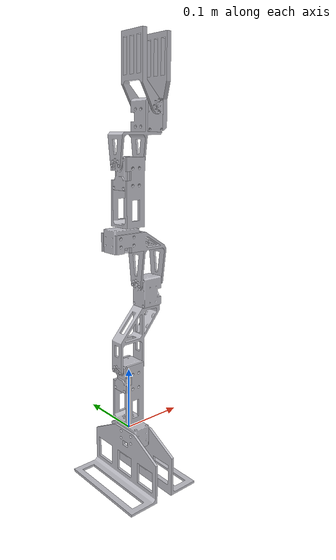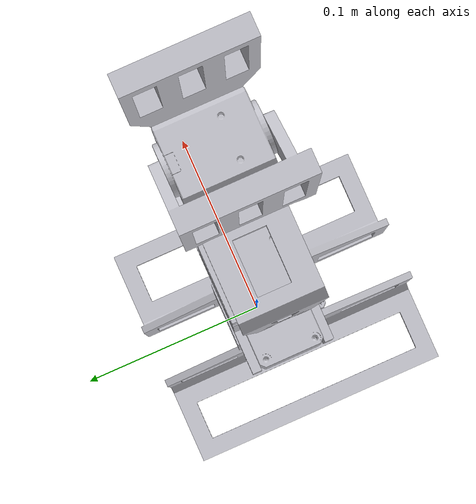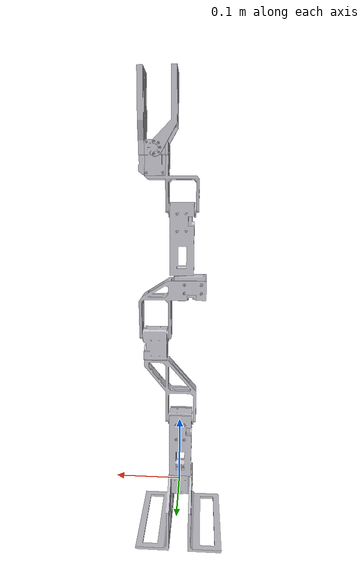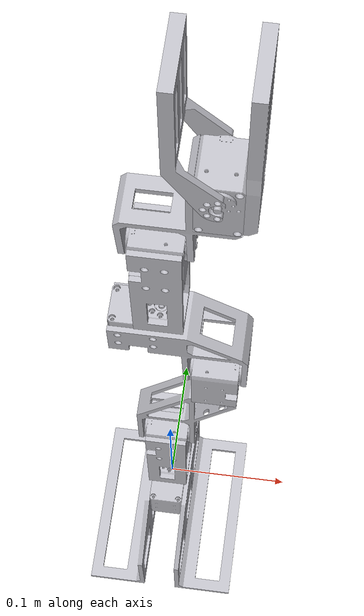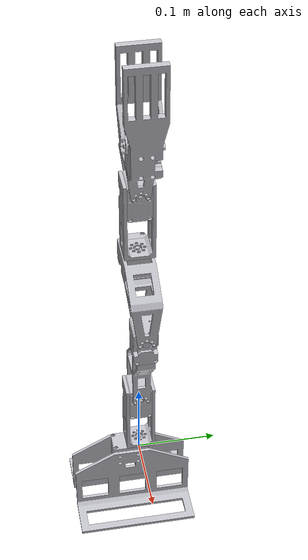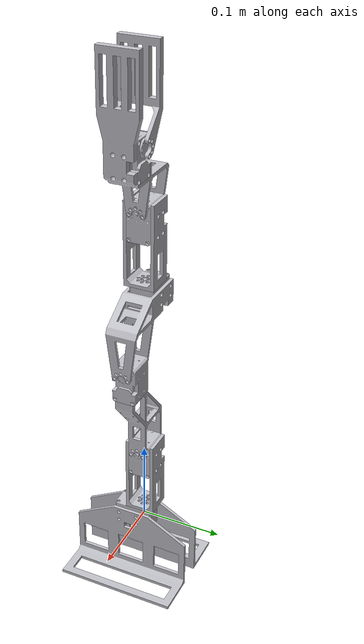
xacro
<?xml version="1.0" ?>
<robot name="manipulator" xmlns:xacro="http://www.ros.org/wiki/xacro">

<xacro:include filename="$(find manipulator)/urdf/materials.xacro" />
<xacro:include filename="$(find manipulator)/urdf/manipulator.trans" />
<xacro:include filename="$(find manipulator)/urdf/manipulator.gazebo" />
<link name="base_link">
  <inertial>
    <origin xyz="0.02239590734911897 -0.01176063731820371 -0.05451857845527507" rpy="0 0 0"/>
    <mass value="0.408609033804223"/>
    <inertia ixx="0.001136" iyy="0.000464" izz="0.000843" ixy="0.0" iyz="-1e-06" ixz="8.9e-05"/>
  </inertial>
  <visual>
    <origin xyz="0 0 0" rpy="0 0 0"/>
    <geometry>
      <mesh filename="package://manipulator/meshes/base_link.stl" scale="0.001 0.001 0.001"/>
    </geometry>
    <material name="silver"/>
  </visual>
  <collision>
    <origin xyz="0 0 0" rpy="0 0 0"/>
    <geometry>
      <mesh filename="package://manipulator/meshes/base_link.stl" scale="0.001 0.001 0.001"/>
    </geometry>
  </collision>
</link>

<link name="case1_1">
  <inertial>
    <origin xyz="-0.014250070484127172 0.01640828355791238 -0.005433634059177349" rpy="0 0 0"/>
    <mass value="0.34080653415518675"/>
    <inertia ixx="9.4e-05" iyy="5.5e-05" izz="8.2e-05" ixy="-0.0" iyz="0.0" ixz="-0.0"/>
  </inertial>
  <visual>
    <origin xyz="-0.012868 0.027801 -0.001527" rpy="0 0 0"/>
    <geometry>
      <mesh filename="package://manipulator/meshes/case1_1.stl" scale="0.001 0.001 0.001"/>
    </geometry>
    <material name="silver"/>
  </visual>
  <collision>
    <origin xyz="-0.012868 0.027801 -0.001527" rpy="0 0 0"/>
    <geometry>
      <mesh filename="package://manipulator/meshes/case1_1.stl" scale="0.001 0.001 0.001"/>
    </geometry>
  </collision>
</link>

<link name="base2_1">
  <inertial>
    <origin xyz="-0.009528048317381948 0.016040362681779042 -0.056045578455275115" rpy="0 0 0"/>
    <mass value="0.4086090338042252"/>
    <inertia ixx="0.001136" iyy="0.000464" izz="0.000843" ixy="-0.0" iyz="-1e-06" ixz="-8.9e-05"/>
  </inertial>
  <visual>
    <origin xyz="0.015632 0.027801 -0.001527" rpy="0 0 0"/>
    <geometry>
      <mesh filename="package://manipulator/meshes/base2_1.stl" scale="0.001 0.001 0.001"/>
    </geometry>
    <material name="silver"/>
  </visual>
  <collision>
    <origin xyz="0.015632 0.027801 -0.001527" rpy="0 0 0"/>
    <geometry>
      <mesh filename="package://manipulator/meshes/base2_1.stl" scale="0.001 0.001 0.001"/>
    </geometry>
  </collision>
</link>

<link name="link1_1">
  <inertial>
    <origin xyz="0.00041157170309191976 -1.4624828903732844e-07 0.0450438228157928" rpy="0 0 0"/>
    <mass value="0.2016099043724989"/>
    <inertia ixx="0.000258" iyy="0.00023" izz="6.9e-05" ixy="-0.0" iyz="-0.0" ixz="-2e-06"/>
  </inertial>
  <visual>
    <origin xyz="0.001382 -0.000199 -0.014527" rpy="0 0 0"/>
    <geometry>
      <mesh filename="package://manipulator/meshes/link1_1.stl" scale="0.001 0.001 0.001"/>
    </geometry>
    <material name="silver"/>
  </visual>
  <collision>
    <origin xyz="0.001382 -0.000199 -0.014527" rpy="0 0 0"/>
    <geometry>
      <mesh filename="package://manipulator/meshes/link1_1.stl" scale="0.001 0.001 0.001"/>
    </geometry>
  </collision>
</link>

<link name="case2_1">
  <inertial>
    <origin xyz="0.006566487292350457 0.014249853751715245 0.01640823797054204" rpy="0 0 0"/>
    <mass value="0.34080653415518675"/>
    <inertia ixx="8.2e-05" iyy="9.4e-05" izz="5.5e-05" ixy="-0.0" iyz="-0.0" ixz="0.0"/>
  </inertial>
  <visual>
    <origin xyz="0.007382 0.014051 -0.075277" rpy="0 0 0"/>
    <geometry>
      <mesh filename="package://manipulator/meshes/case2_1.stl" scale="0.001 0.001 0.001"/>
    </geometry>
    <material name="silver"/>
  </visual>
  <collision>
    <origin xyz="0.007382 0.014051 -0.075277" rpy="0 0 0"/>
    <geometry>
      <mesh filename="package://manipulator/meshes/case2_1.stl" scale="0.001 0.001 0.001"/>
    </geometry>
  </collision>
</link>

<link name="link2_1">
  <inertial>
    <origin xyz="-0.004213732758277829 -1.462482890274351e-07 0.05761392703177749" rpy="0 0 0"/>
    <mass value="0.18470002339388275"/>
    <inertia ixx="0.000144" iyy="0.000231" izz="0.000104" ixy="0.0" iyz="0.0" ixz="-6.7e-05"/>
  </inertial>
  <visual>
    <origin xyz="-0.017618 -0.000199 -0.103277" rpy="0 0 0"/>
    <geometry>
      <mesh filename="package://manipulator/meshes/link2_1.stl" scale="0.001 0.001 0.001"/>
    </geometry>
    <material name="silver"/>
  </visual>
  <collision>
    <origin xyz="-0.017618 -0.000199 -0.103277" rpy="0 0 0"/>
    <geometry>
      <mesh filename="package://manipulator/meshes/link2_1.stl" scale="0.001 0.001 0.001"/>
    </geometry>
  </collision>
</link>

<link name="case3_1">
  <inertial>
    <origin xyz="0.005433371739386662 0.00799985375170667 0.023658237970542173" rpy="0 0 0"/>
    <mass value="0.34080653415518675"/>
    <inertia ixx="8.2e-05" iyy="9.4e-05" izz="5.5e-05" ixy="-0.0" iyz="0.0" ixz="-0.0"/>
  </inertial>
  <visual>
    <origin xyz="-0.030618 0.007801 -0.198927" rpy="0 0 0"/>
    <geometry>
      <mesh filename="package://manipulator/meshes/case3_1.stl" scale="0.001 0.001 0.001"/>
    </geometry>
    <material name="silver"/>
  </visual>
  <collision>
    <origin xyz="-0.030618 0.007801 -0.198927" rpy="0 0 0"/>
    <geometry>
      <mesh filename="package://manipulator/meshes/case3_1.stl" scale="0.001 0.001 0.001"/>
    </geometry>
  </collision>
</link>

<link name="link3_1">
  <inertial>
    <origin xyz="0.0016650787321817323 -1.4624828901480414e-07 0.05671011320901989" rpy="0 0 0"/>
    <mass value="0.25106312786468626"/>
    <inertia ixx="0.000153" iyy="0.000286" izz="0.000215" ixy="-0.0" iyz="0.0" ixz="6.5e-05"/>
  </inertial>
  <visual>
    <origin xyz="-0.017618 -0.000199 -0.234177" rpy="0 0 0"/>
    <geometry>
      <mesh filename="package://manipulator/meshes/link3_1.stl" scale="0.001 0.001 0.001"/>
    </geometry>
    <material name="silver"/>
  </visual>
  <collision>
    <origin xyz="-0.017618 -0.000199 -0.234177" rpy="0 0 0"/>
    <geometry>
      <mesh filename="package://manipulator/meshes/link3_1.stl" scale="0.001 0.001 0.001"/>
    </geometry>
  </collision>
</link>

<link name="case4_1">
  <inertial>
    <origin xyz="0.01640835932206992 0.014249853751706763 -0.005433634059177295" rpy="0 0 0"/>
    <mass value="0.34080653415518675"/>
    <inertia ixx="5.5e-05" iyy="9.4e-05" izz="8.2e-05" ixy="0.0" iyz="0.0" ixz="0.0"/>
  </inertial>
  <visual>
    <origin xyz="0.029382 0.014051 -0.313327" rpy="0 0 0"/>
    <geometry>
      <mesh filename="package://manipulator/meshes/case4_1.stl" scale="0.001 0.001 0.001"/>
    </geometry>
    <material name="silver"/>
  </visual>
  <collision>
    <origin xyz="0.029382 0.014051 -0.313327" rpy="0 0 0"/>
    <geometry>
      <mesh filename="package://manipulator/meshes/case4_1.stl" scale="0.001 0.001 0.001"/>
    </geometry>
  </collision>
</link>

<link name="link4_1">
  <inertial>
    <origin xyz="0.00041157170309193483 -1.4624828901919516e-07 0.04504382281579289" rpy="0 0 0"/>
    <mass value="0.2016099043724985"/>
    <inertia ixx="0.000258" iyy="0.00023" izz="6.9e-05" ixy="-0.0" iyz="0.0" ixz="-2e-06"/>
  </inertial>
  <visual>
    <origin xyz="0.001382 -0.000199 -0.326327" rpy="0 0 0"/>
    <geometry>
      <mesh filename="package://manipulator/meshes/link4_1.stl" scale="0.001 0.001 0.001"/>
    </geometry>
    <material name="silver"/>
  </visual>
  <collision>
    <origin xyz="0.001382 -0.000199 -0.326327" rpy="0 0 0"/>
    <geometry>
      <mesh filename="package://manipulator/meshes/link4_1.stl" scale="0.001 0.001 0.001"/>
    </geometry>
  </collision>
</link>

<link name="case5_1">
  <inertial>
    <origin xyz="-0.005433512707649504 -0.014250146248284797 -0.0075917620294578825" rpy="0 0 0"/>
    <mass value="0.34080653415518675"/>
    <inertia ixx="8.2e-05" iyy="9.4e-05" izz="5.5e-05" ixy="-0.0" iyz="-0.0" ixz="0.0"/>
  </inertial>
  <visual>
    <origin xyz="-0.004618 -0.014449 -0.411077" rpy="0 0 0"/>
    <geometry>
      <mesh filename="package://manipulator/meshes/case5_1.stl" scale="0.001 0.001 0.001"/>
    </geometry>
    <material name="silver"/>
  </visual>
  <collision>
    <origin xyz="-0.004618 -0.014449 -0.411077" rpy="0 0 0"/>
    <geometry>
      <mesh filename="package://manipulator/meshes/case5_1.stl" scale="0.001 0.001 0.001"/>
    </geometry>
  </collision>
</link>

<link name="link5_1">
  <inertial>
    <origin xyz="-0.007731817816433031 -0.00025506341510029255 0.0424196457662081" rpy="0 0 0"/>
    <mass value="0.1643237934541035"/>
    <inertia ixx="8.1e-05" iyy="0.000131" izz="8.1e-05" ixy="0.0" iyz="1e-06" ixz="-2.4e-05"/>
  </inertial>
  <visual>
    <origin xyz="-0.017618 -0.000199 -0.415077" rpy="0 0 0"/>
    <geometry>
      <mesh filename="package://manipulator/meshes/link5_1.stl" scale="0.001 0.001 0.001"/>
    </geometry>
    <material name="silver"/>
  </visual>
  <collision>
    <origin xyz="-0.017618 -0.000199 -0.415077" rpy="0 0 0"/>
    <geometry>
      <mesh filename="package://manipulator/meshes/link5_1.stl" scale="0.001 0.001 0.001"/>
    </geometry>
  </collision>
</link>

<link name="case6_1">
  <inertial>
    <origin xyz="-0.008000070484127209 -0.006566704024770846 0.023658237970542118" rpy="0 0 0"/>
    <mass value="0.34080653415518675"/>
    <inertia ixx="9.4e-05" iyy="8.2e-05" izz="5.5e-05" ixy="0.0" iyz="-0.0" ixz="-0.0"/>
  </inertial>
  <visual>
    <origin xyz="-0.043868 -0.006199 -0.460727" rpy="0 0 0"/>
    <geometry>
      <mesh filename="package://manipulator/meshes/case6_1.stl" scale="0.001 0.001 0.001"/>
    </geometry>
    <material name="silver"/>
  </visual>
  <collision>
    <origin xyz="-0.043868 -0.006199 -0.460727" rpy="0 0 0"/>
    <geometry>
      <mesh filename="package://manipulator/meshes/case6_1.stl" scale="0.001 0.001 0.001"/>
    </geometry>
  </collision>
</link>

<link name="link6_1">
  <inertial>
    <origin xyz="0.003970831683360154 -0.006329811420383323 0.03690785967114296" rpy="0 0 0"/>
    <mass value="0.25174373584366844"/>
    <inertia ixx="0.000389" iyy="0.000354" izz="3.8e-05" ixy="0.0" iyz="-4e-06" ixz="-0.0"/>
  </inertial>
  <visual>
    <origin xyz="-0.050118 -0.006199 -0.491977" rpy="0 0 0"/>
    <geometry>
      <mesh filename="package://manipulator/meshes/link6_1.stl" scale="0.001 0.001 0.001"/>
    </geometry>
    <material name="silver"/>
  </visual>
  <collision>
    <origin xyz="-0.050118 -0.006199 -0.491977" rpy="0 0 0"/>
    <geometry>
      <mesh filename="package://manipulator/meshes/link6_1.stl" scale="0.001 0.001 0.001"/>
    </geometry>
  </collision>
</link>

<link name="link7_1">
  <inertial>
    <origin xyz="-0.023072508481003125 0.018999853751710906 0.05456040638673598" rpy="0 0 0"/>
    <mass value="0.15138355095135578"/>
    <inertia ixx="0.000171" iyy="0.00014" izz="4.5e-05" ixy="-0.0" iyz="-0.0" ixz="2e-05"/>
  </inertial>
  <visual>
    <origin xyz="-0.035868 0.018801 -0.495977" rpy="0 0 0"/>
    <geometry>
      <mesh filename="package://manipulator/meshes/link7_1.stl" scale="0.001 0.001 0.001"/>
    </geometry>
    <material name="silver"/>
  </visual>
  <collision>
    <origin xyz="-0.035868 0.018801 -0.495977" rpy="0 0 0"/>
    <geometry>
      <mesh filename="package://manipulator/meshes/link7_1.stl" scale="0.001 0.001 0.001"/>
    </geometry>
  </collision>
</link>

<joint name="°­ÃŒ 46" type="fixed">
  <origin xyz="0.012868 -0.027801 0.001527" rpy="0 0 0"/>
  <parent link="base_link"/>
  <child link="case1_1"/>
</joint>

<joint name="°­ÃŒ 47" type="fixed">
  <origin xyz="-0.0285 0.0 0.0" rpy="0 0 0"/>
  <parent link="case1_1"/>
  <child link="base2_1"/>
</joint>

<joint name="ÈžÀü 48" type="continuous">
  <origin xyz="-0.01425 0.028 0.013" rpy="0 0 0"/>
  <parent link="case1_1"/>
  <child link="link1_1"/>
  <axis xyz="0.0 0.0 1.0"/>
</joint>

<joint name="°­ÃŒ 49" type="fixed">
  <origin xyz="-0.006 -0.01425 0.06075" rpy="0 0 0"/>
  <parent link="link1_1"/>
  <child link="case2_1"/>
</joint>

<joint name="ÈžÀü 50" type="continuous">
  <origin xyz="0.025 0.01425 0.028" rpy="0 0 0"/>
  <parent link="case2_1"/>
  <child link="link2_1"/>
  <axis xyz="1.0 -0.0 -0.0"/>
</joint>

<joint name="°­ÃŒ 51" type="fixed">
  <origin xyz="0.013 -0.008 0.09565" rpy="0 0 0"/>
  <parent link="link2_1"/>
  <child link="case3_1"/>
</joint>

<joint name="ÈžÀü 52" type="continuous">
  <origin xyz="-0.013 0.008 0.03525" rpy="0 0 0"/>
  <parent link="case3_1"/>
  <child link="link3_1"/>
  <axis xyz="-1.0 0.0 0.0"/>
</joint>

<joint name="°­ÃŒ 53" type="fixed">
  <origin xyz="-0.047 -0.01425 0.07915" rpy="0 0 0"/>
  <parent link="link3_1"/>
  <child link="case4_1"/>
</joint>

<joint name="ÈžÀü 54" type="continuous">
  <origin xyz="0.028 0.01425 0.013" rpy="0 0 0"/>
  <parent link="case4_1"/>
  <child link="link4_1"/>
  <axis xyz="0.0 0.0 1.0"/>
</joint>

<joint name="°­ÃŒ 55" type="fixed">
  <origin xyz="0.006 0.01425 0.08475" rpy="0 0 0"/>
  <parent link="link4_1"/>
  <child link="case5_1"/>
</joint>

<joint name="ÈžÀü 56" type="continuous">
  <origin xyz="0.013 -0.01425 0.004" rpy="0 0 0"/>
  <parent link="case5_1"/>
  <child link="link5_1"/>
  <axis xyz="1.0 -0.0 -0.0"/>
</joint>

<joint name="°­ÃŒ 57" type="fixed">
  <origin xyz="0.02625 0.006 0.04565" rpy="0 0 0"/>
  <parent link="link5_1"/>
  <child link="case6_1"/>
</joint>

<joint name="°­ÃŒ 58" type="fixed">
  <origin xyz="0.00625 0.0 0.03125" rpy="0 0 0"/>
  <parent link="case6_1"/>
  <child link="link6_1"/>
</joint>

<joint name="ÈžÀü 59" type="continuous">
  <origin xyz="-0.008 -0.025 0.03525" rpy="0 0 0"/>
  <parent link="case6_1"/>
  <child link="link7_1"/>
  <axis xyz="-0.0 -1.0 -0.0"/>
</joint>

</robot>

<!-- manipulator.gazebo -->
<robot name="manipulator" xmlns:xacro="http://www.ros.org/wiki/xacro" >

<xacro:property name="body_color" value="Gazebo/Silver" />

<gazebo>
  <plugin name="control" filename="libgazebo_ros_control.so"/>
</gazebo>
<gazebo reference="base_link">
  <material>${body_color}</material>
  <mu1>0.2</mu1>
  <mu2>0.2</mu2>
  <selfCollide>true</selfCollide>
  <gravity>true</gravity>
</gazebo>

<gazebo reference="case1_1">
  <material>${body_color}</material>
  <mu1>0.2</mu1>
  <mu2>0.2</mu2>
  <selfCollide>true</selfCollide>
</gazebo>

<gazebo reference="base2_1">
  <material>${body_color}</material>
  <mu1>0.2</mu1>
  <mu2>0.2</mu2>
  <selfCollide>true</selfCollide>
</gazebo>

<gazebo reference="link1_1">
  <material>${body_color}</material>
  <mu1>0.2</mu1>
  <mu2>0.2</mu2>
  <selfCollide>true</selfCollide>
</gazebo>

<gazebo reference="case2_1">
  <material>${body_color}</material>
  <mu1>0.2</mu1>
  <mu2>0.2</mu2>
  <selfCollide>true</selfCollide>
</gazebo>

<gazebo reference="link2_1">
  <material>${body_color}</material>
  <mu1>0.2</mu1>
  <mu2>0.2</mu2>
  <selfCollide>true</selfCollide>
</gazebo>

<gazebo reference="case3_1">
  <material>${body_color}</material>
  <mu1>0.2</mu1>
  <mu2>0.2</mu2>
  <selfCollide>true</selfCollide>
</gazebo>

<gazebo reference="link3_1">
  <material>${body_color}</material>
  <mu1>0.2</mu1>
  <mu2>0.2</mu2>
  <selfCollide>true</selfCollide>
</gazebo>

<gazebo reference="case4_1">
  <material>${body_color}</material>
  <mu1>0.2</mu1>
  <mu2>0.2</mu2>
  <selfCollide>true</selfCollide>
</gazebo>

<gazebo reference="link4_1">
  <material>${body_color}</material>
  <mu1>0.2</mu1>
  <mu2>0.2</mu2>
  <selfCollide>true</selfCollide>
</gazebo>

<gazebo reference="case5_1">
  <material>${body_color}</material>
  <mu1>0.2</mu1>
  <mu2>0.2</mu2>
  <selfCollide>true</selfCollide>
</gazebo>

<gazebo reference="link5_1">
  <material>${body_color}</material>
  <mu1>0.2</mu1>
  <mu2>0.2</mu2>
  <selfCollide>true</selfCollide>
</gazebo>

<gazebo reference="case6_1">
  <material>${body_color}</material>
  <mu1>0.2</mu1>
  <mu2>0.2</mu2>
  <selfCollide>true</selfCollide>
</gazebo>

<gazebo reference="link6_1">
  <material>${body_color}</material>
  <mu1>0.2</mu1>
  <mu2>0.2</mu2>
  <selfCollide>true</selfCollide>
</gazebo>

<gazebo reference="link7_1">
  <material>${body_color}</material>
  <mu1>0.2</mu1>
  <mu2>0.2</mu2>
  <selfCollide>true</selfCollide>
</gazebo>

</robot>
